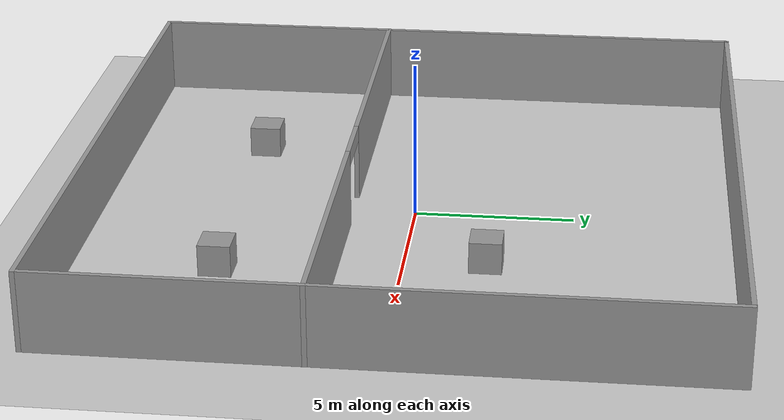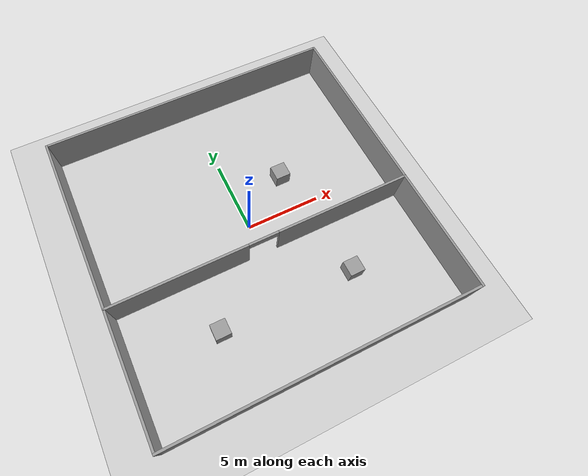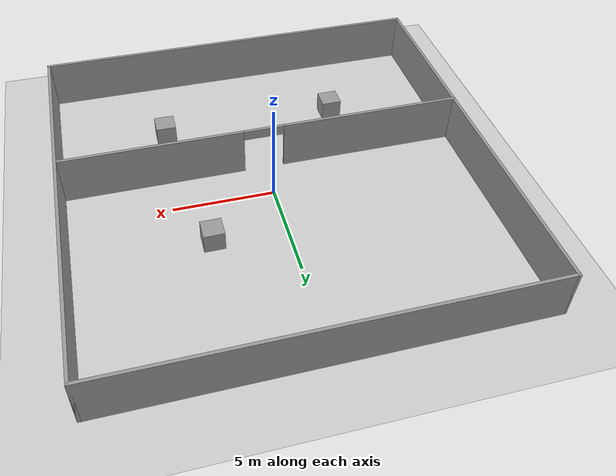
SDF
<sdf version="1.7">
 <world name="default">
  <light name="sun" type="directional">
   <pose>0 0 10 0 -0 0</pose>
   <diffuse>0.8 0.8 0.8 1</diffuse>
   <specular>0.2 0.2 0.2 1</specular>
   <attenuation>
    <range>1000</range>
    <constant>0.9</constant>
    <linear>0.01</linear>
    <quadratic>0.001</quadratic>
   </attenuation>
   <direction>-0.5 0.1 -0.9</direction>
   <spot><inner_angle>0</inner_angle><outer_angle>0</outer_angle><falloff>0</falloff></spot>
  </light>
  <model name="ground_plane">
   <static>1</static>
   <link name="link">
    <collision name="collision">
     <geometry><plane><normal>0 0 1</normal><size>100 100</size></plane></geometry>
     <surface><friction><ode><mu>100</mu><mu2>50</mu2></ode></friction></surface>
    </collision>
    <visual name="visual">
     <cast_shadows>0</cast_shadows>
     <geometry><plane><normal>0 0 1</normal><size>100 100</size></plane></geometry>
     <material>
      <script><uri>file://media/materials/scripts/gazebo.material</uri><name>Gazebo/Grey</name></script>
     </material>
    </visual>
   </link>
  </model>
  <gravity>0 0 -9.8</gravity>
  <magnetic_field>6e-06 2.3e-05 -4.2e-05</magnetic_field>
  <atmosphere type="adiabatic"/>
  <physics type="ode">
   <max_step_size>0.001</max_step_size>
   <real_time_factor>1</real_time_factor>
   <real_time_update_rate>1000</real_time_update_rate>
  </physics>
  <scene><ambient>0.4 0.4 0.4 1</ambient><background>0.7 0.7 0.7 1</background><shadows>1</shadows></scene>
  <audio><device>default</device></audio>
  <spherical_coordinates>
   <surface_model>EARTH_WGS84</surface_model>
   <latitude_deg>0</latitude_deg>
   <longitude_deg>0</longitude_deg>
   <elevation>0</elevation>
   <heading_deg>0</heading_deg>
  </spherical_coordinates>
  <model name="unit_box_0">
   <pose>3.5 2.50001 0.499995 0 1e-05 -5e-06</pose>
   <link name="link">
    <inertial>
     <mass>1</mass>
     <inertia>
      <ixx>0.166667</ixx>
      <ixy>0</ixy>
      <ixz>0</ixz>
      <iyy>0.166667</iyy>
      <iyz>0</iyz>
      <izz>0.166667</izz>
     </inertia>
    </inertial>
    <collision name="collision"><geometry><box><size>1 1 1</size></box></geometry></collision>
    <visual name="visual">
     <geometry><box><size>1 1 1</size></box></geometry>
     <material>
      <script><name>Gazebo/Grey</name><uri>file://media/materials/scripts/gazebo.material</uri></script>
     </material>
    </visual>
   </link>
  </model>
  <model name="20x20_room">
   <link name="Wall_15">
    <collision name="Wall_15_Collision">
     <geometry><box><size>20.15 0.15 2.5</size></box></geometry>
     <pose>0 0 1.25 0 -0 0</pose>
    </collision>
    <visual name="Wall_15_Visual">
     <pose>0 0 1.25 0 -0 0</pose>
     <geometry><box><size>20.15 0.15 2.5</size></box></geometry>
     <material>
      <script><uri>file://media/materials/scripts/gazebo.material</uri><name>Gazebo/Grey</name></script>
      <ambient>1 1 1 1</ambient>
     </material>
     <meta><layer>0</layer></meta>
    </visual>
    <pose>10 0 0 0 -0 -1.5708</pose>
   </link>
   <link name="Wall_17">
    <collision name="Wall_17_Collision">
     <geometry><box><size>20.15 0.15 2.5</size></box></geometry>
     <pose>0 0 1.25 0 -0 0</pose>
    </collision>
    <visual name="Wall_17_Visual">
     <pose>0 0 1.25 0 -0 0</pose>
     <geometry><box><size>20.15 0.15 2.5</size></box></geometry>
     <material>
      <script><uri>file://media/materials/scripts/gazebo.material</uri><name>Gazebo/Grey</name></script>
      <ambient>1 1 1 1</ambient>
     </material>
     <meta><layer>0</layer></meta>
    </visual>
    <pose>0 -10 0 0 -0 3.14159</pose>
   </link>
   <link name="Wall_19">
    <collision name="Wall_19_Collision">
     <geometry><box><size>20.15 0.15 2.5</size></box></geometry>
     <pose>0 0 1.25 0 -0 0</pose>
    </collision>
    <visual name="Wall_19_Visual">
     <pose>0 0 1.25 0 -0 0</pose>
     <geometry><box><size>20.15 0.15 2.5</size></box></geometry>
     <material>
      <script><uri>file://media/materials/scripts/gazebo.material</uri><name>Gazebo/Grey</name></script>
      <ambient>1 1 1 1</ambient>
     </material>
     <meta><layer>0</layer></meta>
    </visual>
    <pose>-10 0 0 0 -0 -1.5708</pose>
   </link>
   <link name="Wall_21">
    <collision name="Wall_21_Collision">
     <geometry><box><size>20.15 0.15 2.5</size></box></geometry>
     <pose>0 0 1.25 0 -0 0</pose>
    </collision>
    <visual name="Wall_21_Visual">
     <pose>0 0 1.25 0 -0 0</pose>
     <geometry><box><size>20.15 0.15 2.5</size></box></geometry>
     <material>
      <script><uri>file://media/materials/scripts/gazebo.material</uri><name>Gazebo/Grey</name></script>
      <ambient>1 1 1 1</ambient>
     </material>
     <meta><layer>0</layer></meta>
    </visual>
    <pose>0 10 0 0 -0 0</pose>
   </link>
   <static>1</static>
  </model>
  <model name="door01">
   <pose>0 -1.0375 0 0 -0 0</pose>
   <link name="Wall_0">
    <pose>0 -0.9625 0 0 -0 0</pose>
    <visual name="Wall_0_Visual_0">
     <pose>-5.5375 0 1.25 0 -0 0</pose>
     <geometry><box><size>9.075 0.15 2.5</size></box></geometry>
     <material>
      <script><uri>file://media/materials/scripts/gazebo.material</uri><name>Gazebo/Grey</name></script>
      <ambient>1 1 1 1</ambient>
     </material>
     <meta><layer>0</layer></meta>
    </visual>
    <collision name="Wall_0_Collision_0">
     <geometry><box><size>9.075 0.15 2.5</size></box></geometry>
     <pose>-5.5375 0 1.25 0 -0 0</pose>
    </collision>
    <visual name="Wall_0_Visual_1">
     <pose>5.5375 0 1.25 0 -0 0</pose>
     <geometry><box><size>9.075 0.15 2.5</size></box></geometry>
     <material>
      <script><uri>file://media/materials/scripts/gazebo.material</uri><name>Gazebo/Grey</name></script>
      <ambient>1 1 1 1</ambient>
     </material>
     <meta><layer>0</layer></meta>
    </visual>
    <collision name="Wall_0_Collision_1">
     <geometry><box><size>9.075 0.15 2.5</size></box></geometry>
     <pose>5.5375 0 1.25 0 -0 0</pose>
    </collision>
    <visual name="Wall_0_Visual_2">
     <pose>0 0 2.25 0 -0 0</pose>
     <geometry><box><size>2 0.15 0.5</size></box></geometry>
     <material>
      <script><uri>file://media/materials/scripts/gazebo.material</uri><name>Gazebo/Grey</name></script>
      <ambient>1 1 1 1</ambient>
     </material>
     <meta><layer>0</layer></meta>
    </visual>
    <collision name="Wall_0_Collision_2">
     <geometry><box><size>2 0.15 0.5</size></box></geometry>
     <pose>0 0 2.25 0 -0 0</pose>
    </collision>
   </link>
   <static>1</static>
  </model>
  <model name="unit_box_0_clone">
   <pose>-4.49999 -5.5 0.499995 0 1e-05 -6e-06</pose>
   <link name="link">
    <inertial>
     <mass>1</mass>
     <inertia>
      <ixx>0.166667</ixx>
      <ixy>0</ixy>
      <ixz>0</ixz>
      <iyy>0.166667</iyy>
      <iyz>0</iyz>
      <izz>0.166667</izz>
     </inertia>
    </inertial>
    <collision name="collision"><geometry><box><size>1 1 1</size></box></geometry></collision>
    <visual name="visual">
     <geometry><box><size>1 1 1</size></box></geometry>
     <material>
      <script><name>Gazebo/Grey</name><uri>file://media/materials/scripts/gazebo.material</uri></script>
     </material>
    </visual>
   </link>
  </model>
  <model name="unit_box">
   <pose>4.5 -5.5 0.5 0 -0 0</pose>
   <link name="link">
    <inertial>
     <mass>1</mass>
     <inertia>
      <ixx>0.166667</ixx>
      <ixy>0</ixy>
      <ixz>0</ixz>
      <iyy>0.166667</iyy>
      <iyz>0</iyz>
      <izz>0.166667</izz>
     </inertia>
    </inertial>
    <collision name="collision"><geometry><box><size>1 1 1</size></box></geometry></collision>
    <visual name="visual">
     <geometry><box><size>1 1 1</size></box></geometry>
     <material>
      <script><name>Gazebo/Grey</name><uri>file://media/materials/scripts/gazebo.material</uri></script>
     </material>
    </visual>
   </link>
  </model>
 </world>
</sdf>
